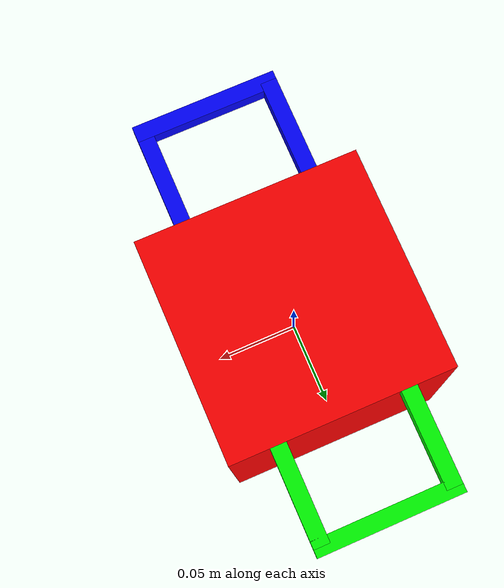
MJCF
<mujoco model="pot">
    <asset>
        <mesh name="potmesh" file="meshes/handles.stl" />
    </asset>
    <worldbody>
        <body name="collision">
            <geom type="box" size="0.07 0.07 0.07" rgba="1 0 0 1" group="1"/>
            <body>
            <!-- x handle -->
                <geom type="box" pos="0 0.13 0.065" size="0.045 0.005 0.005" rgba="0 1 0 1"  group="1"/>
                <geom type="box" pos="-0.04 0.1 0.065" size="0.005 0.03 0.005" rgba="0 1 0 1"  group="1"/>
                <geom type="box" pos="0.04 0.1 0.065" size="0.005 0.03 0.005" rgba="0 1 0 1"  group="1"/>
            </body>
            <body>
            <!-- -x handle -->
                <geom type="box" pos="0 -0.13 0.065" size="0.045 0.005 0.005" rgba="0 0 1 1" group="1"/>
                <geom type="box" pos="-0.04 -0.1 0.065" size="0.005 0.03 0.005" rgba="0 0 1 1" group="1"/>
                <geom type="box" pos="0.04 -0.1 0.065" size="0.005 0.03 0.005" rgba="0 0 1 1" group="1"/>
            </body>
            <site name="pot_handle_1" size="0.005" rgba="0 1 0 1" pos="0 0.13 0.065"/>
            <site name="pot_handle_2" size="0.005" rgba="0 0 1 1" pos="0 -0.13 0.065"/>
            <site name="pot_center" size="0.005" rgba="1 0 0 0" pos="0 0 0"/>
            <site name="pot_bottom" size="0.005" rgba="1 0 0 0" pos="0 0 -0.07"/>
        </body>
        <body name="visual">
            <geom type="box" size="0.07 0.07 0.07" rgba="1 0 0 1"/>
            <body>
            <!-- x handle -->
                <geom type="box" pos="0 0.13 0.065" size="0.045 0.005 0.005" rgba="0 1 0 1"/>
                <geom type="box" pos="-0.04 0.1 0.065" size="0.005 0.03 0.005" rgba="0 1 0 1"/>
                <geom type="box" pos="0.04 0.1 0.065" size="0.005 0.03 0.005" rgba="0 1 0 1"/>
            </body>
            <body>
            <!-- -x handle -->
                <geom type="box" pos="0 -0.13 0.065" size="0.045 0.005 0.005" rgba="0 0 1 1" />
                <geom type="box" pos="-0.04 -0.1 0.065" size="0.005 0.03 0.005" rgba="0 0 1 1" />
                <geom type="box" pos="0.04 -0.1 0.065" size="0.005 0.03 0.005" rgba="0 0 1 1" />
            </body>
        </body>
        <!-- These sites are for stacking objects, for aligning objects on a table for example. -->
        <site rgba="0 0 0 0" size="0.005" pos="0 0 -0.07" name="bottom_site"/>
        <site rgba="0 0 0 0" size="0.005" pos="0 0 0.05" name="top_site"/>
        <site rgba="0 0 0 0" size="0.005" pos="0.15 0 0" name="horizontal_radius_site"/>
    </worldbody>
</mujoco>
